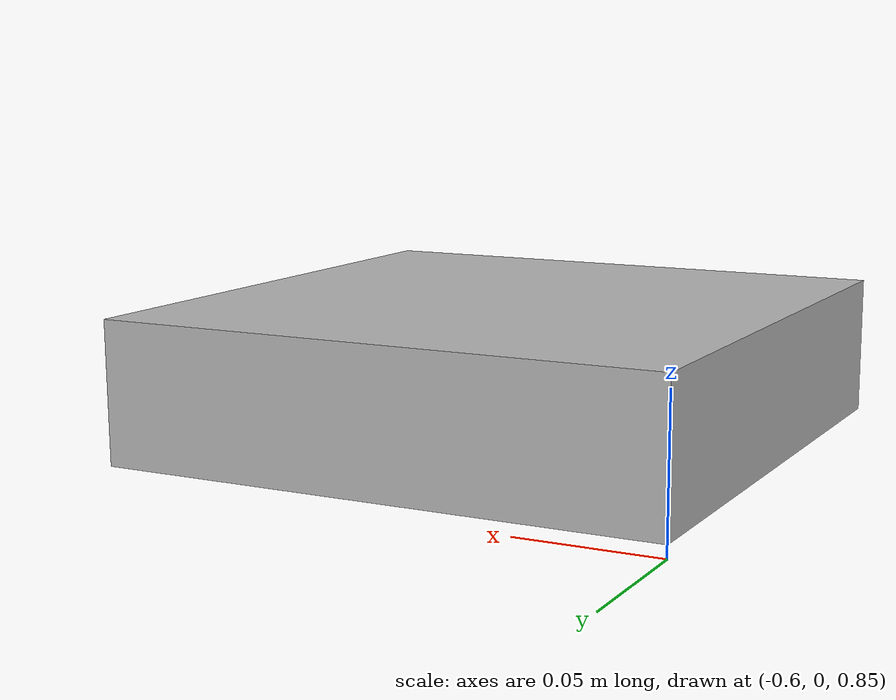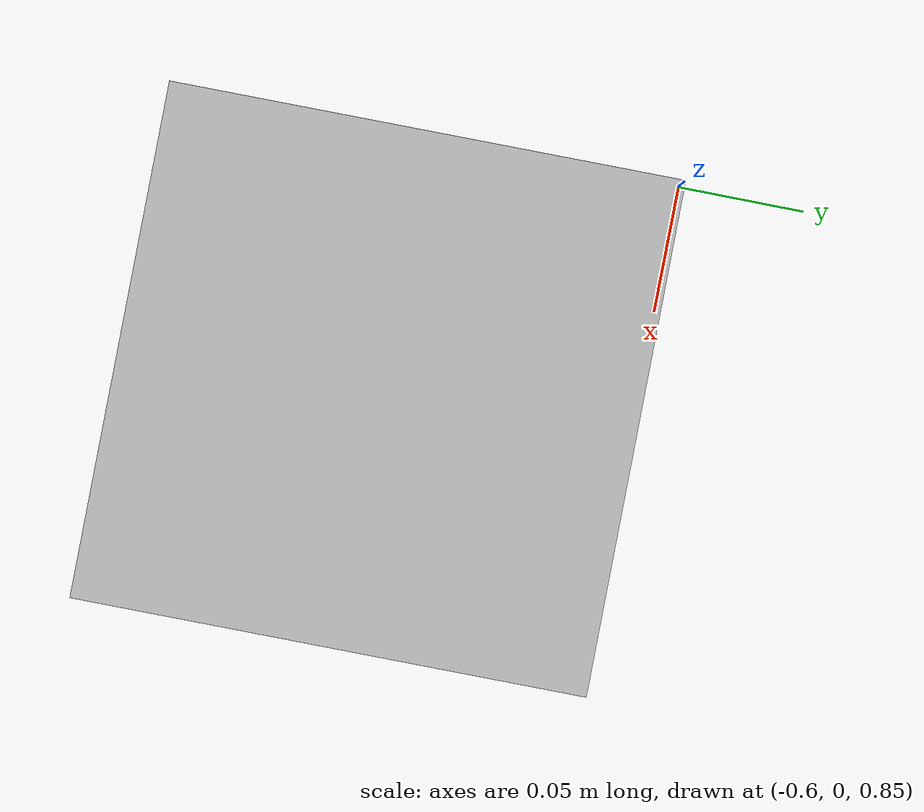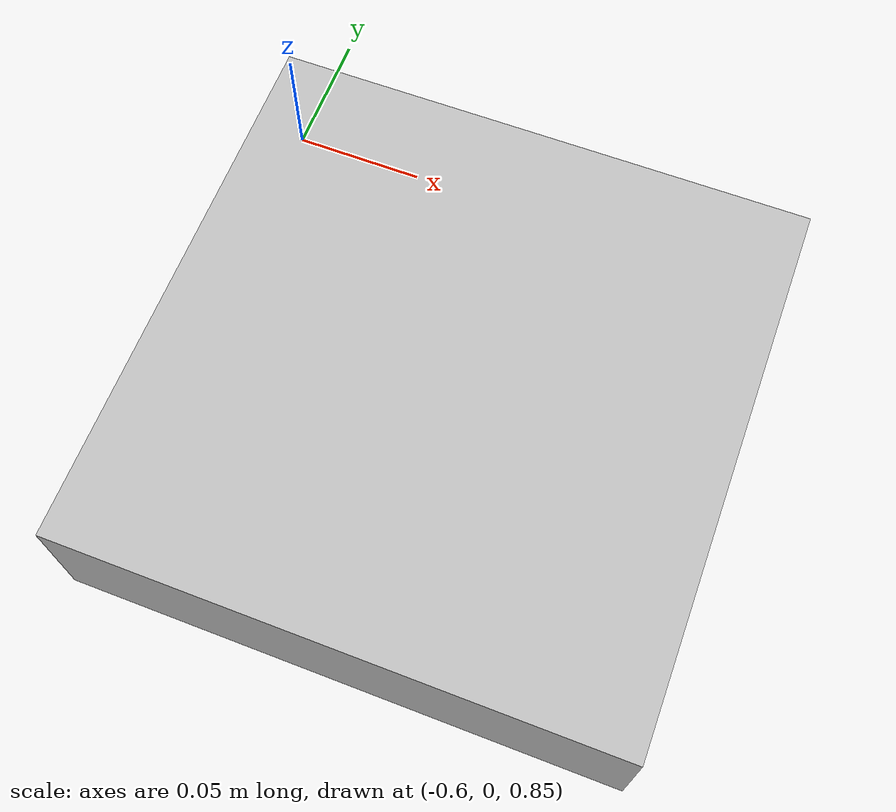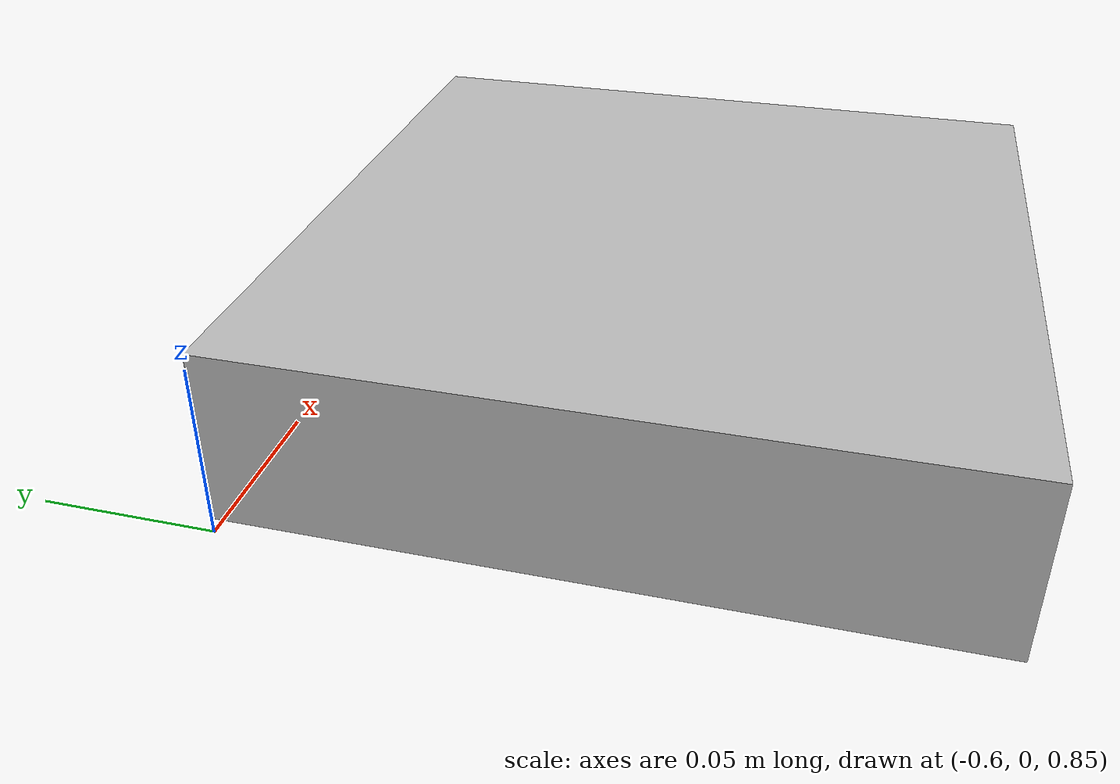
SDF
<?xml version="1.0" ?>
<sdf version='1.4'>
  <model name='pf'>
    <joint name='prismatic_joint' type='prismatic'>
      <child>platform</child>
      <parent>world</parent>
      <axis>
        <limit>
          <lower>-0.12</lower>
          <upper>0.12</upper>
          <effort>1000</effort>
          <velocity>0.4</velocity>
        </limit>
        <dynamics>
          <damping>0</damping>
        </dynamics>
        <xyz>0 0 1</xyz>
      </axis>
    </joint>
    <link name='platform'>
      <pose>-0.5 -0.1 0.87949 0 0 0</pose>
      <inertial>
        <pose>0 0 0 0 0 0</pose>
        <mass>0.1</mass>
        <inertia>
          <ixx>1</ixx>
          <ixy>0</ixy>
          <ixz>0</ixz>
          <iyy>1</iyy>
          <iyz>0</iyz>
          <izz>1</izz>
        </inertia>
      </inertial>
      <collision name='platform_collision'>
        <pose>0 0 0 0 0 0</pose>
        <geometry>
          <box>
            <size>0.2 0.2 0.05</size>
          </box>
        </geometry>
      </collision>
      <visual name='platform_visual'>
        <pose>0 0 0 0 0 0</pose>
        <geometry>
          <box>
            <size>0.2 0.2 0.05</size>
          </box>
        </geometry>
      </visual>
    </link>
  </model>
</sdf>
